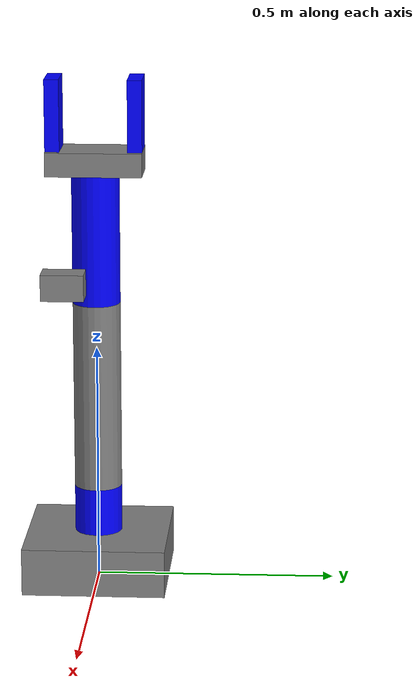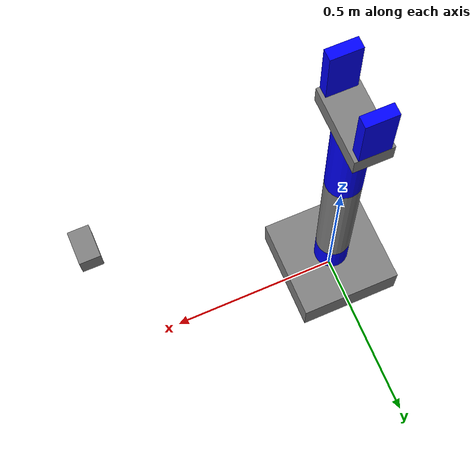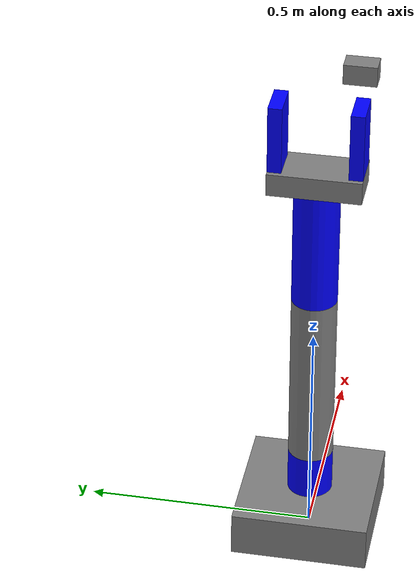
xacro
<?xml version="1.0"?>
<robot name="robx7" xmlns:xacro="http://www.ros.org/wiki/xacro">

    <xacro:arg name="use_gazebo" default="false"/>

    <xacro:include filename="common_properties.xacro"/>
    <xacro:include filename="robx7_arm.xacro"/>
    <xacro:include filename="robx7_gripper.xacro"/>
    <xacro:include filename="robx7_gazebo.xacro"/>
    <xacro:include filename="robx7_camera.xacro"/>

</robot>

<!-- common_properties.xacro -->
<robot xmlns:xacro="http://www.ros.org/wiki/xacro">

    <xacro:property name="PI" value="3.14159265"/>
    <xacro:property name="effort" value="1"/>
    <xacro:property name="velocity" value="1"/>

    <material name="blue">
        <color rgba="0 0 1 1"/>
    </material>

    <material name="gray">
        <color rgba="0.5 0.5 0.5 1"/>
    </material>

    <xacro:macro name="box_inertia" params="m x y z o_xyz o_rpy">
        <inertial>
            <mass value="${m}"/>
            <origin xyz="${o_xyz}" rpy="${o_rpy}"/>
            <inertia
                ixx = "${(m/12)*(z*z + y*y)}" ixy = "0" ixz = "0"
                iyy = "${(m/12)*(x*x + z*z)}" iyz = "0"
                izz = "${(m/12)*(x*x + y*y)}"/>
        </inertial>
    </xacro:macro>

    <xacro:macro name="cylinder_inertia" params="m r l o_xyz o_rpy">
        <inertial>
            <mass value="${m}"/>
            <origin xyz="${o_xyz}" rpy="${o_rpy}"/>
            <inertia
                ixx = "${(m/12)*(3*r*r + l*l)}" ixy = "0" ixz = "0"
                iyy = "${(m/12)*(3*r*r + l*l)}" iyz = "0"
                izz = "${(m/2)*(r*r)}"/>
        </inertial>
    </xacro:macro>

    <xacro:macro name="sphere_inertia" params="m r o_xyz">
        <inertial>
            <mass value="${m}"/>
            <origin xyz="${o_xyz}" rpy="0.0 0.0 0.0"/>
            <inertia
                ixx = "${(2/5)*m*r*r}" ixy = "0" ixz = "0"
                iyy = "${(2/5)*m*r*r}" iyz = "0"
                izz = "${(2/5)*m*r*r}"/>
        </inertial>
    </xacro:macro>

</robot>

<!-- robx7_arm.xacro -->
<robot xmlns:xacro="http://www.ros.org/wiki/xacro">

    <xacro:property name="base_link_length" value="0.3"/>
    <xacro:property name="base_link_width" value="0.3"/>
    <xacro:property name="base_link_height" value="0.1"/>
    <xacro:property name="base_link_mass" value="0.1"/>

    <xacro:property name="firts_link_length" value="0.1"/>
    <xacro:property name="firts_link_radius" value="0.05"/>
    <xacro:property name="first_link_mass" value="1.0"/>

    <xacro:property name="second_link_length" value="0.4"/>
    <xacro:property name="second_link_radius" value="0.05"/>
    <xacro:property name="second_link_mass" value="1.0"/>
    <xacro:property name="second_link_rpy" value="0.0 ${PI/2} 0.0"/>

    <xacro:property name="third_link_length" value="0.3"/>
    <xacro:property name="third_link_radius" value="0.05"/>
    <xacro:property name="third_link_mass" value="1.0"/>
    <xacro:property name="third_link_rpy" value="0.0 ${PI/2} 0.0"/>

    <link name="world"/>

    <link name="base_link">
        <visual>
            <origin xyz="0.0 0.0 ${base_link_height/2}" rpy="0.0 0.0 0.0"/>
            <geometry>
                <box size="${base_link_length} ${base_link_width} ${base_link_height}"/>
            </geometry>
            <material name="gray"/>
        </visual>
        <xacro:box_inertia m="${base_link_mass}" x="${base_link_length}" y="${base_link_width}" z="${base_link_height}" o_xyz="0.0 0.0 ${base_link_height/2}" o_rpy="0.0 0.0 0.0"/>
        <collision>
            <origin xyz="0.0 0.0 ${base_link_height/2}" rpy="0.0 0.0 0.0"/>
            <geometry>
                <box size="${base_link_length} ${base_link_width} ${base_link_height}"/>
            </geometry>
        </collision>
    </link>

     <link name="first_link">
        <visual>
            <origin xyz="0.0 0.0 ${firts_link_length/2}" rpy="0.0 0.0 0.0"/>
            <geometry>
                <cylinder radius="${firts_link_radius}" length="${firts_link_length}"/>
            </geometry>
            <material name="blue"/>
        </visual>
        <xacro:cylinder_inertia m="${first_link_mass}" r="${firts_link_radius}" l="${firts_link_length}" o_xyz="0.0 0.0 ${firts_link_length/2}" o_rpy="0.0 0.0 0.0"/>
        <collision>
            <origin xyz="0.0 0.0 ${firts_link_length/2}" rpy="0.0 0.0 0.0"/>
            <geometry>
                <cylinder radius="${firts_link_radius}" length="${firts_link_length}"/>
            </geometry>
        </collision>
    </link>

    <link name="second_link">
        <visual>
            <origin xyz="${second_link_length/2} 0.0 0.0" rpy="${second_link_rpy}"/>
            <geometry>
                <cylinder radius="${second_link_radius}" length="${second_link_length}"/>
            </geometry>
            <material name="gray"/>
        </visual>
        <xacro:cylinder_inertia m="${second_link_mass}" r="${second_link_radius}" l="${second_link_length}" o_xyz="${second_link_length/2} 0.0 0.0" o_rpy="${second_link_rpy}"/>
        <collision>
            <origin xyz="${second_link_length/2} 0.0 0.0" rpy="${second_link_rpy}"/>
            <geometry>
                <cylinder radius="${second_link_radius}" length="${second_link_length}"/>
            </geometry>
        </collision>
    </link>

    <link name="third_link">
        <visual>
            <origin xyz="${third_link_length/2} 0.0 0.0" rpy="${third_link_rpy}"/>
            <geometry>
                <cylinder radius="${third_link_radius}" length="${third_link_length}"/>
            </geometry>
            <material name="blue"/>
        </visual>
        <xacro:cylinder_inertia m="${third_link_mass}" r="${third_link_radius}" l="${third_link_length}" o_xyz="${third_link_length/2} 0.0 0.0" o_rpy="${third_link_rpy}"/>
        <collision>
            <origin xyz="${third_link_length/2} 0.0 0.0" rpy="${third_link_rpy}"/>
            <geometry>
                <cylinder radius="${third_link_radius}" length="${third_link_length}"/>
            </geometry>
        </collision>
    </link>

    <joint name="world_base_joint" type="fixed">
        <parent link="world"/>
        <child link="base_link"/>
        <origin xyz="0.0 0.0 0.0" rpy="0.0 0.0 0.0"/>
    </joint>

    <joint name="base_first_joint" type="revolute">
        <parent link="base_link"/>
        <child link="first_link"/>
        <origin xyz = "0.0 0.0 ${base_link_height}" rpy = "0.0 0.0 0.0"/>
        <axis xyz="0 0 1"/>
        <limit lower="-${PI}" upper="${PI}" effort="${effort}" velocity="${velocity}"/>
    </joint>

    <joint name="first_second_joint" type="revolute">
        <parent link="first_link"/>
        <child link="second_link"/>
        <origin xyz = "0.0 0.0 ${firts_link_length}" rpy = "-${PI/2} -${PI/2} 0.0"/>
        <axis xyz="0 0 1"/>
        <limit lower="-${PI/2}" upper="${PI/2}" effort="${effort}" velocity="${velocity}"/>
    </joint>

    <joint name="second_third_joint" type="revolute">
        <parent link="second_link"/>
        <child link="third_link"/>
        <origin xyz = "${second_link_length} 0.0 0.0" rpy = "0 0 0.0"/>
        <axis xyz="0 0 1"/>
        <limit lower="-${PI/2}" upper="${PI/2}" effort="${effort}" velocity="${velocity}"/>
    </joint>

</robot>

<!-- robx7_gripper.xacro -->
<robot xmlns:xacro="http://www.ros.org/wiki/xacro">

    <xacro:property name="gripper_base_length" value="0.05"/>
    <xacro:property name="gripper_base_width" value="0.2"/>
    <xacro:property name="gripper_base_height" value="0.1"/>
    <xacro:property name="gripper_base_mass" value="1.0"/>
    <xacro:property name="gripper_base_rpy" value="0.0 0.0 0.0"/>

    <xacro:property name="gripper_finger_length" value="0.15"/>
    <xacro:property name="gripper_finger_width" value="0.08"/>
    <xacro:property name="gripper_finger_height" value="0.03"/>
    <xacro:property name="gripper_finger_mass" value="1.0"/>
    <xacro:property name="gripper_finger_rpy" value="0.0 0.0 0.0"/>

    <link name="gripper_base">
        <visual>
            <origin xyz="0 0 0" rpy="0.0 0.0 0.0"/>
            <geometry>
                <box size="${gripper_base_length} ${gripper_base_width} ${gripper_base_height}"/>
            </geometry>
            <material name="gray"/>
        </visual>
        <xacro:box_inertia m="${gripper_base_mass}" x="${gripper_base_length}" y="${gripper_base_width}" z="${gripper_base_height}" o_xyz="0.0 0.0 0.0" o_rpy="0.0 0.0 0.0"/>
        <collision>
            <origin xyz="0 0 0" rpy="0.0 0.0 0.0"/>
            <geometry>
                <box size="${gripper_base_length} ${gripper_base_width} ${gripper_base_height}"/>
            </geometry>
            <material name="gray"/>
        </collision>
    </link>

    <link name="gripper_finger_left">
        <visual>
            <origin xyz="${gripper_finger_length/2} 0 0" rpy="0.0 0.0 0.0"/>
            <geometry>
                <box size="${gripper_finger_length} ${gripper_finger_width} ${gripper_finger_height}"/>
            </geometry>
            <material name="blue"/>
        </visual>
        <xacro:box_inertia m="${gripper_finger_mass}" x="${gripper_finger_length}" y="${gripper_finger_width}" z="${gripper_finger_height}" o_xyz="${gripper_finger_length/2} 0 0" o_rpy="0.0 0.0 0.0"/>
        <collision>
            <origin xyz="${gripper_finger_length/2} 0 0" rpy="0.0 0.0 0.0"/>
            <geometry>
                <box size="${gripper_finger_length} ${gripper_finger_width} ${gripper_finger_height}"/>
            </geometry>
        </collision>
    </link>

    <link name="gripper_finger_right">
        <visual>
            <origin xyz="${gripper_finger_length/2} 0 0" rpy="0.0 0.0 0.0"/>
            <geometry>
                <box size="${gripper_finger_length} ${gripper_finger_width} ${gripper_finger_height}"/>
            </geometry>
            <material name="blue"/>
        </visual>
        <xacro:box_inertia m="${gripper_finger_mass}" x="${gripper_finger_length}" y="${gripper_finger_width}" z="${gripper_finger_height}" o_xyz="${gripper_finger_length/2} 0 0" o_rpy="0.0 0.0 0.0"/>
        <collision>
            <origin xyz="${gripper_finger_length/2} 0 0" rpy="0.0 0.0 0.0"/>
            <geometry>
                <box size="${gripper_finger_length} ${gripper_finger_width} ${gripper_finger_height}"/>
            </geometry>
        </collision>
    </link>

    <joint name="third_link_gripper_base" type="fixed">
        <parent link="third_link"/>
        <child link="gripper_base"/>
        <origin xyz="${third_link_length} 0 0" rpy="${PI/2} 0.0 0.0"/>
    </joint>

    <joint name="gripper_base_finger_left" type="prismatic">
        <parent link="gripper_base"/>
        <child link="gripper_finger_left"/>
        <origin xyz="${gripper_base_length/2} ${gripper_base_width/2-gripper_finger_height/2} 0" rpy="${PI/2} 0.0 0.0"/>
        <axis xyz="0 0 1"/>
        <limit lower="0.0" upper="${gripper_base_width/2-gripper_finger_height}" effort="${effort}" velocity="${velocity}"/>
    </joint>

    <joint name="gripper_base_finger_right" type="prismatic">
        <parent link="gripper_base"/>
        <child link="gripper_finger_right"/>
        <origin xyz="${gripper_base_length/2} -${gripper_base_width/2-gripper_finger_height/2} 0" rpy="${PI/2} 0.0 0.0"/>
        <axis xyz="0 0 1"/>
        <limit lower="0.0" upper="${gripper_base_width/2-gripper_finger_height}" effort="${effort}" velocity="${velocity}"/>
        <mimic joint="gripper_base_finger_left" multiplier="-1.0" offset="0.0"/>
    </joint>

</robot>

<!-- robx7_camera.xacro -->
<robot xmlns:xacro="http://www.ros.org/wiki/xacro">

    <xacro:property name="camera_x" value="0.65"/>
    <xacro:property name="camera_y" value="0.0"/>
    <xacro:property name="camera_z" value="0.8"/>

    <xacro:property name="camera_width_px" value="640"/>
    <xacro:property name="camera_height_px" value="480"/>
    <xacro:property name="camera_hfov" value="1.2"/> <!-- Horizontal field of view radians -->
    <xacro:property name="camera_rate" value="15"/> <!-- Hz -->

    <link name="camera_link">
        <visual>
            <geometry>
                <box size="0.05 0.08 0.05"/>
            </geometry>
            <material name="gray"/>
        </visual>
        <xacro:box_inertia m="0.05" x="0.05" y="0.08" z="0.05" o_xyz="0 0 0" o_rpy="0 0 0"/>
    </link>

    <link name="camera_optical_link"/>

    <joint name="world_camera_joint" type="fixed">
        <parent link="world"/>
        <child link="camera_link"/>
        <origin xyz="${camera_x} ${camera_y} ${camera_z}" rpy="0 ${PI/2} 0"/>
    </joint>

    <joint name="camera_optical_joint" type="fixed">
        <parent link="camera_link"/>
        <child link="camera_optical_link"/>
        <origin xyz="0 0 0" rpy="${-PI/2} 0 ${-PI/2}"/>
    </joint>

    <xacro:if value="$(arg use_gazebo)">
        <gazebo reference="camera_link">
            <sensor type="camera" name="camera">
                <always_on>true</always_on>
                <update_rate>${camera_rate}</update_rate>
                <topic>camera</topic>
                <ignition_frame_id>camera_optical_link</ignition_frame_id>
                <camera>
                    <horizontal_fov>${camera_hfov}</horizontal_fov>
                    <image>
                        <width>${camera_width_px}</width>
                        <height>${camera_height_px}</height>
                        <format>R8G8B8</format>
                    </image>
                    <clip>
                        <near>0.05</near>
                        <far>5.0</far>
                    </clip>
                </camera>
            </sensor>
        </gazebo>
    </xacro:if>

</robot>
